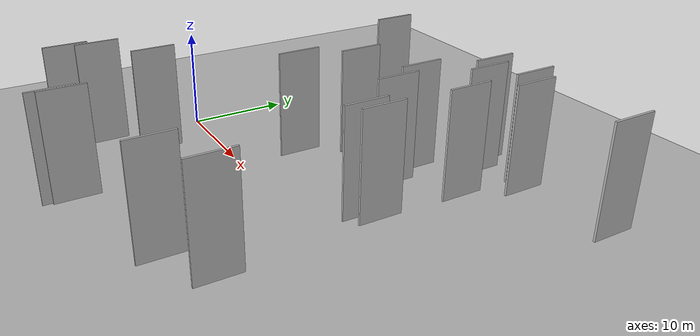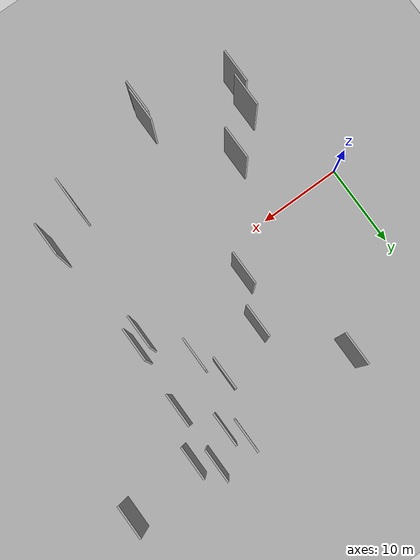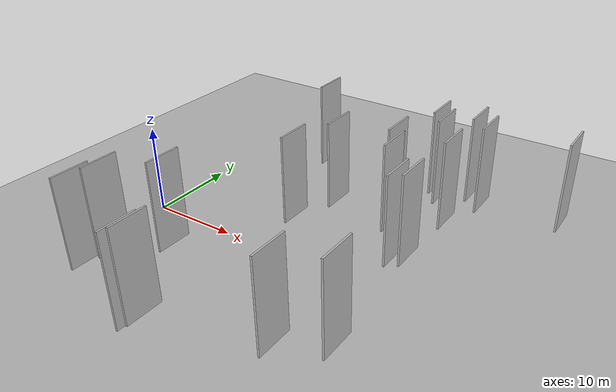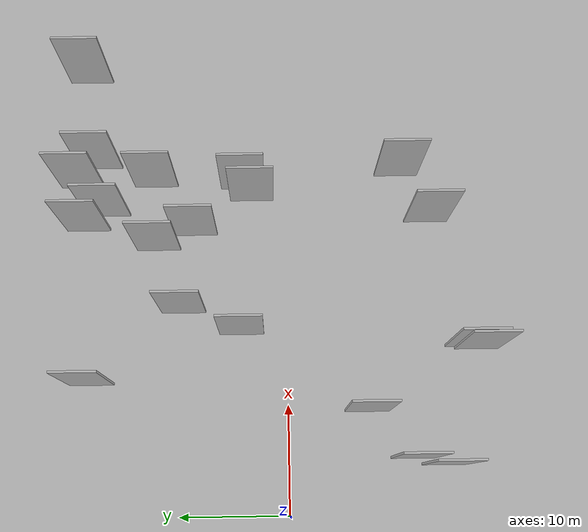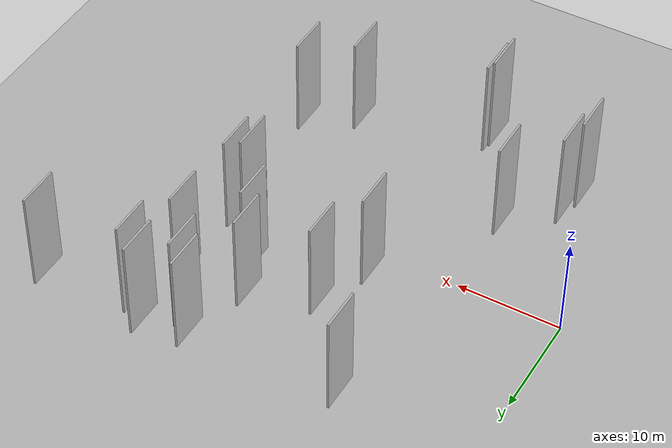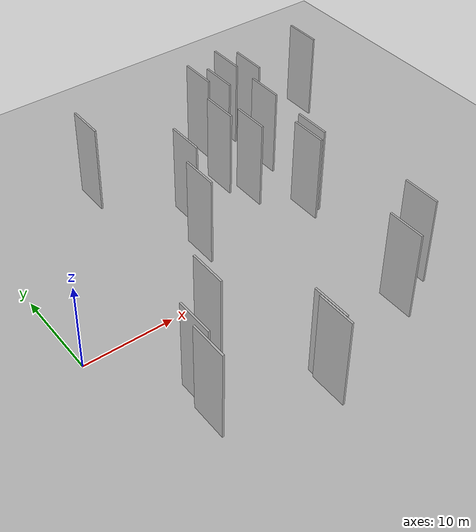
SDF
<?xml version="1.0" encoding="utf-8"?>

<sdf version="1.6">

   <world name="default">

      <gui fullscreen="0">

         <camera name="user_camera">

            <pose>-15 0 4.57585 0 0 0</pose>

            <view_controller>orbit</view_controller>

         </camera>

      </gui>

      <scene>

         <sky>

           <clouds>

             <speed>12</speed>

           </clouds>

         </sky>

         <ambient>0.4 0.4 0.4 1</ambient>

         <background>0.7 0.7 0.7 1</background>

         <shadows>1</shadows>

      </scene>

      <gravity>0 0 -9.8066</gravity>

      <magnetic_field>6e-06 2.3e-05 -4.2e-05</magnetic_field>

      <physics default="0" name="default_physics" type="ode">

         <ode>

            <solver>

               <type>quick</type>

               <iters>10</iters>

               <sor>1.0</sor>

               <use_dynamic_moi_rescaling>0</use_dynamic_moi_rescaling>

            </solver>

            <constraints>

               <cfm>0</cfm>

               <erp>0.2</erp>

               <contact_max_correcting_vel>100</contact_max_correcting_vel>

               <contact_surface_layer>0.001</contact_surface_layer>

            </constraints>

         </ode>

         <max_step_size>0.004</max_step_size>

         <real_time_factor>1</real_time_factor>

         <real_time_update_rate>250</real_time_update_rate>

      </physics>

      <light name="sun" type="directional">

         <cast_shadows>1</cast_shadows>

         <pose>0 0 10 0 0 0</pose>

         <diffuse>0.8 0.8 0.8 1</diffuse>

         <specular>0.2 0.2 0.2 1</specular>

         <attenuation>

            <range>1000</range>

            <constant>0.9</constant>

            <linear>0.01</linear>

            <quadratic>0.001</quadratic>

         </attenuation>

         <direction>-0.5 0.1 -0.9</direction>

      </light>

      <include>

         <name>ground_plane_1</name>

         <uri>model://HANNAS_ground_plane</uri>

         <pose>0 0 0  0 0 0</pose>

      </include>

      <include>

         <name>ground_plane_2</name>

         <uri>model://HANNAS_ground_plane</uri>

         <pose>100 0 0  0 0 0</pose>

      </include>

      <model name="HANNAS_wall_1">

         <static>1</static>

         <pose frame="">4.4582 -13.6974 2.5 0.000000 0.000000 1.570796</pose>

         <link name="link">

            <pose frame="">0 0 5.00 0 0 0</pose>

            <collision name="collision">

               <geometry>

                  <box>

                     <size>4.00 0.2 10.00</size>

                  </box>

               </geometry>

               <max_contacts>10</max_contacts>

               <surface>

                  <contact>

                     <ode/>

                  </contact>

                  <bounce/>

                  <friction>

                     <torsional>

                        <ode/>

                     </torsional>

                     <ode/>

                  </friction>

               </surface>

            </collision>

            <visual name="visual">

               <cast_shadows>0</cast_shadows>

               <geometry>

                  <box>

                     <size>4.00 0.2 10.00</size>

                  </box>

               </geometry>

               <material>

                  <script>

                     <uri>model://HANNAS_wall/materials/scripts</uri>

                     <uri>model://HANNAS_wall/materials/textures</uri>

                     <name>vrc/HANNAS_wall</name>

                  </script>

               </material>

            </visual>

            <self_collide>0</self_collide>

            <enable_wind>0</enable_wind>

            <kinematic>0</kinematic>

         </link>

      </model>

      <model name="HANNAS_wall_2">

         <static>1</static>

         <pose frame="">28.9669 3.1683 2.5 0.000000 0.000000 1.570796</pose>

         <link name="link">

            <pose frame="">0 0 5.00 0 0 0</pose>

            <collision name="collision">

               <geometry>

                  <box>

                     <size>4.00 0.2 10.00</size>

                  </box>

               </geometry>

               <max_contacts>10</max_contacts>

               <surface>

                  <contact>

                     <ode/>

                  </contact>

                  <bounce/>

                  <friction>

                     <torsional>

                        <ode/>

                     </torsional>

                     <ode/>

                  </friction>

               </surface>

            </collision>

            <visual name="visual">

               <cast_shadows>0</cast_shadows>

               <geometry>

                  <box>

                     <size>4.00 0.2 10.00</size>

                  </box>

               </geometry>

               <material>

                  <script>

                     <uri>model://HANNAS_wall/materials/scripts</uri>

                     <uri>model://HANNAS_wall/materials/textures</uri>

                     <name>vrc/HANNAS_wall</name>

                  </script>

               </material>

            </visual>

            <self_collide>0</self_collide>

            <enable_wind>0</enable_wind>

            <kinematic>0</kinematic>

         </link>

      </model>

      <model name="HANNAS_wall_3">

         <static>1</static>

         <pose frame="">26.2351 18.2482 2.5 0.000000 0.000000 1.570796</pose>

         <link name="link">

            <pose frame="">0 0 5.00 0 0 0</pose>

            <collision name="collision">

               <geometry>

                  <box>

                     <size>4.00 0.2 10.00</size>

                  </box>

               </geometry>

               <max_contacts>10</max_contacts>

               <surface>

                  <contact>

                     <ode/>

                  </contact>

                  <bounce/>

                  <friction>

                     <torsional>

                        <ode/>

                     </torsional>

                     <ode/>

                  </friction>

               </surface>

            </collision>

            <visual name="visual">

               <cast_shadows>0</cast_shadows>

               <geometry>

                  <box>

                     <size>4.00 0.2 10.00</size>

                  </box>

               </geometry>

               <material>

                  <script>

                     <uri>model://HANNAS_wall/materials/scripts</uri>

                     <uri>model://HANNAS_wall/materials/textures</uri>

                     <name>vrc/HANNAS_wall</name>

                  </script>

               </material>

            </visual>

            <self_collide>0</self_collide>

            <enable_wind>0</enable_wind>

            <kinematic>0</kinematic>

         </link>

      </model>

      <model name="HANNAS_wall_4">

         <static>1</static>

         <pose frame="">30.1284 4.0043 2.5 0.000000 0.000000 1.570796</pose>

         <link name="link">

            <pose frame="">0 0 5.00 0 0 0</pose>

            <collision name="collision">

               <geometry>

                  <box>

                     <size>4.00 0.2 10.00</size>

                  </box>

               </geometry>

               <max_contacts>10</max_contacts>

               <surface>

                  <contact>

                     <ode/>

                  </contact>

                  <bounce/>

                  <friction>

                     <torsional>

                        <ode/>

                     </torsional>

                     <ode/>

                  </friction>

               </surface>

            </collision>

            <visual name="visual">

               <cast_shadows>0</cast_shadows>

               <geometry>

                  <box>

                     <size>4.00 0.2 10.00</size>

                  </box>

               </geometry>

               <material>

                  <script>

                     <uri>model://HANNAS_wall/materials/scripts</uri>

                     <uri>model://HANNAS_wall/materials/textures</uri>

                     <name>vrc/HANNAS_wall</name>

                  </script>

               </material>

            </visual>

            <self_collide>0</self_collide>

            <enable_wind>0</enable_wind>

            <kinematic>0</kinematic>

         </link>

      </model>

      <model name="HANNAS_wall_5">

         <static>1</static>

         <pose frame="">5.0619 -10.9735 2.5 0.000000 0.000000 1.570796</pose>

         <link name="link">

            <pose frame="">0 0 5.00 0 0 0</pose>

            <collision name="collision">

               <geometry>

                  <box>

                     <size>4.00 0.2 10.00</size>

                  </box>

               </geometry>

               <max_contacts>10</max_contacts>

               <surface>

                  <contact>

                     <ode/>

                  </contact>

                  <bounce/>

                  <friction>

                     <torsional>

                        <ode/>

                     </torsional>

                     <ode/>

                  </friction>

               </surface>

            </collision>

            <visual name="visual">

               <cast_shadows>0</cast_shadows>

               <geometry>

                  <box>

                     <size>4.00 0.2 10.00</size>

                  </box>

               </geometry>

               <material>

                  <script>

                     <uri>model://HANNAS_wall/materials/scripts</uri>

                     <uri>model://HANNAS_wall/materials/textures</uri>

                     <name>vrc/HANNAS_wall</name>

                  </script>

               </material>

            </visual>

            <self_collide>0</self_collide>

            <enable_wind>0</enable_wind>

            <kinematic>0</kinematic>

         </link>

      </model>

      <model name="HANNAS_wall_6">

         <static>1</static>

         <pose frame="">18.4053 9.4377 2.5 0.000000 0.000000 1.570796</pose>

         <link name="link">

            <pose frame="">0 0 5.00 0 0 0</pose>

            <collision name="collision">

               <geometry>

                  <box>

                     <size>4.00 0.2 10.00</size>

                  </box>

               </geometry>

               <max_contacts>10</max_contacts>

               <surface>

                  <contact>

                     <ode/>

                  </contact>

                  <bounce/>

                  <friction>

                     <torsional>

                        <ode/>

                     </torsional>

                     <ode/>

                  </friction>

               </surface>

            </collision>

            <visual name="visual">

               <cast_shadows>0</cast_shadows>

               <geometry>

                  <box>

                     <size>4.00 0.2 10.00</size>

                  </box>

               </geometry>

               <material>

                  <script>

                     <uri>model://HANNAS_wall/materials/scripts</uri>

                     <uri>model://HANNAS_wall/materials/textures</uri>

                     <name>vrc/HANNAS_wall</name>

                  </script>

               </material>

            </visual>

            <self_collide>0</self_collide>

            <enable_wind>0</enable_wind>

            <kinematic>0</kinematic>

         </link>

      </model>

      <model name="HANNAS_wall_7">

         <static>1</static>

         <pose frame="">25.7033 8.3853 2.5 0.000000 0.000000 1.570796</pose>

         <link name="link">

            <pose frame="">0 0 5.00 0 0 0</pose>

            <collision name="collision">

               <geometry>

                  <box>

                     <size>4.00 0.2 10.00</size>

                  </box>

               </geometry>

               <max_contacts>10</max_contacts>

               <surface>

                  <contact>

                     <ode/>

                  </contact>

                  <bounce/>

                  <friction>

                     <torsional>

                        <ode/>

                     </torsional>

                     <ode/>

                  </friction>

               </surface>

            </collision>

            <visual name="visual">

               <cast_shadows>0</cast_shadows>

               <geometry>

                  <box>

                     <size>4.00 0.2 10.00</size>

                  </box>

               </geometry>

               <material>

                  <script>

                     <uri>model://HANNAS_wall/materials/scripts</uri>

                     <uri>model://HANNAS_wall/materials/textures</uri>

                     <name>vrc/HANNAS_wall</name>

                  </script>

               </material>

            </visual>

            <self_collide>0</self_collide>

            <enable_wind>0</enable_wind>

            <kinematic>0</kinematic>

         </link>

      </model>

      <model name="HANNAS_wall_8">

         <static>1</static>

         <pose frame="">24.3124 11.7627 2.5 0.000000 0.000000 1.570796</pose>

         <link name="link">

            <pose frame="">0 0 5.00 0 0 0</pose>

            <collision name="collision">

               <geometry>

                  <box>

                     <size>4.00 0.2 10.00</size>

                  </box>

               </geometry>

               <max_contacts>10</max_contacts>

               <surface>

                  <contact>

                     <ode/>

                  </contact>

                  <bounce/>

                  <friction>

                     <torsional>

                        <ode/>

                     </torsional>

                     <ode/>

                  </friction>

               </surface>

            </collision>

            <visual name="visual">

               <cast_shadows>0</cast_shadows>

               <geometry>

                  <box>

                     <size>4.00 0.2 10.00</size>

                  </box>

               </geometry>

               <material>

                  <script>

                     <uri>model://HANNAS_wall/materials/scripts</uri>

                     <uri>model://HANNAS_wall/materials/textures</uri>

                     <name>vrc/HANNAS_wall</name>

                  </script>

               </material>

            </visual>

            <self_collide>0</self_collide>

            <enable_wind>0</enable_wind>

            <kinematic>0</kinematic>

         </link>

      </model>

      <model name="HANNAS_wall_9">

         <static>1</static>

         <pose frame="">11.8897 17.6740 2.5 0.000000 0.000000 1.570796</pose>

         <link name="link">

            <pose frame="">0 0 5.00 0 0 0</pose>

            <collision name="collision">

               <geometry>

                  <box>

                     <size>4.00 0.2 10.00</size>

                  </box>

               </geometry>

               <max_contacts>10</max_contacts>

               <surface>

                  <contact>

                     <ode/>

                  </contact>

                  <bounce/>

                  <friction>

                     <torsional>

                        <ode/>

                     </torsional>

                     <ode/>

                  </friction>

               </surface>

            </collision>

            <visual name="visual">

               <cast_shadows>0</cast_shadows>

               <geometry>

                  <box>

                     <size>4.00 0.2 10.00</size>

                  </box>

               </geometry>

               <material>

                  <script>

                     <uri>model://HANNAS_wall/materials/scripts</uri>

                     <uri>model://HANNAS_wall/materials/textures</uri>

                     <name>vrc/HANNAS_wall</name>

                  </script>

               </material>

            </visual>

            <self_collide>0</self_collide>

            <enable_wind>0</enable_wind>

            <kinematic>0</kinematic>

         </link>

      </model>

      <model name="HANNAS_wall_10">

         <static>1</static>

         <pose frame="">31.2248 -10.2661 2.5 0.000000 0.000000 1.570796</pose>

         <link name="link">

            <pose frame="">0 0 5.00 0 0 0</pose>

            <collision name="collision">

               <geometry>

                  <box>

                     <size>4.00 0.2 10.00</size>

                  </box>

               </geometry>

               <max_contacts>10</max_contacts>

               <surface>

                  <contact>

                     <ode/>

                  </contact>

                  <bounce/>

                  <friction>

                     <torsional>

                        <ode/>

                     </torsional>

                     <ode/>

                  </friction>

               </surface>

            </collision>

            <visual name="visual">

               <cast_shadows>0</cast_shadows>

               <geometry>

                  <box>

                     <size>4.00 0.2 10.00</size>

                  </box>

               </geometry>

               <material>

                  <script>

                     <uri>model://HANNAS_wall/materials/scripts</uri>

                     <uri>model://HANNAS_wall/materials/textures</uri>

                     <name>vrc/HANNAS_wall</name>

                  </script>

               </material>

            </visual>

            <self_collide>0</self_collide>

            <enable_wind>0</enable_wind>

            <kinematic>0</kinematic>

         </link>

      </model>

      <model name="HANNAS_wall_11">

         <static>1</static>

         <pose frame="">15.0175 -16.2208 2.5 0.000000 0.000000 1.570796</pose>

         <link name="link">

            <pose frame="">0 0 5.00 0 0 0</pose>

            <collision name="collision">

               <geometry>

                  <box>

                     <size>4.00 0.2 10.00</size>

                  </box>

               </geometry>

               <max_contacts>10</max_contacts>

               <surface>

                  <contact>

                     <ode/>

                  </contact>

                  <bounce/>

                  <friction>

                     <torsional>

                        <ode/>

                     </torsional>

                     <ode/>

                  </friction>

               </surface>

            </collision>

            <visual name="visual">

               <cast_shadows>0</cast_shadows>

               <geometry>

                  <box>

                     <size>4.00 0.2 10.00</size>

                  </box>

               </geometry>

               <material>

                  <script>

                     <uri>model://HANNAS_wall/materials/scripts</uri>

                     <uri>model://HANNAS_wall/materials/textures</uri>

                     <name>vrc/HANNAS_wall</name>

                  </script>

               </material>

            </visual>

            <self_collide>0</self_collide>

            <enable_wind>0</enable_wind>

            <kinematic>0</kinematic>

         </link>

      </model>

      <model name="HANNAS_wall_12">

         <static>1</static>

         <pose frame="">32.2550 17.2422 2.5 0.000000 0.000000 1.570796</pose>

         <link name="link">

            <pose frame="">0 0 5.00 0 0 0</pose>

            <collision name="collision">

               <geometry>

                  <box>

                     <size>4.00 0.2 10.00</size>

                  </box>

               </geometry>

               <max_contacts>10</max_contacts>

               <surface>

                  <contact>

                     <ode/>

                  </contact>

                  <bounce/>

                  <friction>

                     <torsional>

                        <ode/>

                     </torsional>

                     <ode/>

                  </friction>

               </surface>

            </collision>

            <visual name="visual">

               <cast_shadows>0</cast_shadows>

               <geometry>

                  <box>

                     <size>4.00 0.2 10.00</size>

                  </box>

               </geometry>

               <material>

                  <script>

                     <uri>model://HANNAS_wall/materials/scripts</uri>

                     <uri>model://HANNAS_wall/materials/textures</uri>

                     <name>vrc/HANNAS_wall</name>

                  </script>

               </material>

            </visual>

            <self_collide>0</self_collide>

            <enable_wind>0</enable_wind>

            <kinematic>0</kinematic>

         </link>

      </model>

      <model name="HANNAS_wall_13">

         <static>1</static>

         <pose frame="">27.6321 16.4294 2.5 0.000000 0.000000 1.570796</pose>

         <link name="link">

            <pose frame="">0 0 5.00 0 0 0</pose>

            <collision name="collision">

               <geometry>

                  <box>

                     <size>4.00 0.2 10.00</size>

                  </box>

               </geometry>

               <max_contacts>10</max_contacts>

               <surface>

                  <contact>

                     <ode/>

                  </contact>

                  <bounce/>

                  <friction>

                     <torsional>

                        <ode/>

                     </torsional>

                     <ode/>

                  </friction>

               </surface>

            </collision>

            <visual name="visual">

               <cast_shadows>0</cast_shadows>

               <geometry>

                  <box>

                     <size>4.00 0.2 10.00</size>

                  </box>

               </geometry>

               <material>

                  <script>

                     <uri>model://HANNAS_wall/materials/scripts</uri>

                     <uri>model://HANNAS_wall/materials/textures</uri>

                     <name>vrc/HANNAS_wall</name>

                  </script>

               </material>

            </visual>

            <self_collide>0</self_collide>

            <enable_wind>0</enable_wind>

            <kinematic>0</kinematic>

         </link>

      </model>

      <model name="HANNAS_wall_14">

         <static>1</static>

         <pose frame="">30.4307 18.8848 2.5 0.000000 0.000000 1.570796</pose>

         <link name="link">

            <pose frame="">0 0 5.00 0 0 0</pose>

            <collision name="collision">

               <geometry>

                  <box>

                     <size>4.00 0.2 10.00</size>

                  </box>

               </geometry>

               <max_contacts>10</max_contacts>

               <surface>

                  <contact>

                     <ode/>

                  </contact>

                  <bounce/>

                  <friction>

                     <torsional>

                        <ode/>

                     </torsional>

                     <ode/>

                  </friction>

               </surface>

            </collision>

            <visual name="visual">

               <cast_shadows>0</cast_shadows>

               <geometry>

                  <box>

                     <size>4.00 0.2 10.00</size>

                  </box>

               </geometry>

               <material>

                  <script>

                     <uri>model://HANNAS_wall/materials/scripts</uri>

                     <uri>model://HANNAS_wall/materials/textures</uri>

                     <name>vrc/HANNAS_wall</name>

                  </script>

               </material>

            </visual>

            <self_collide>0</self_collide>

            <enable_wind>0</enable_wind>

            <kinematic>0</kinematic>

         </link>

      </model>

      <model name="HANNAS_wall_15">

         <static>1</static>

         <pose frame="">30.4062 12.0328 2.5 0.000000 0.000000 1.570796</pose>

         <link name="link">

            <pose frame="">0 0 5.00 0 0 0</pose>

            <collision name="collision">

               <geometry>

                  <box>

                     <size>4.00 0.2 10.00</size>

                  </box>

               </geometry>

               <max_contacts>10</max_contacts>

               <surface>

                  <contact>

                     <ode/>

                  </contact>

                  <bounce/>

                  <friction>

                     <torsional>

                        <ode/>

                     </torsional>

                     <ode/>

                  </friction>

               </surface>

            </collision>

            <visual name="visual">

               <cast_shadows>0</cast_shadows>

               <geometry>

                  <box>

                     <size>4.00 0.2 10.00</size>

                  </box>

               </geometry>

               <material>

                  <script>

                     <uri>model://HANNAS_wall/materials/scripts</uri>

                     <uri>model://HANNAS_wall/materials/textures</uri>

                     <name>vrc/HANNAS_wall</name>

                  </script>

               </material>

            </visual>

            <self_collide>0</self_collide>

            <enable_wind>0</enable_wind>

            <kinematic>0</kinematic>

         </link>

      </model>

      <model name="HANNAS_wall_16">

         <static>1</static>

         <pose frame="">40.8125 18.2715 2.5 0.000000 0.000000 1.570796</pose>

         <link name="link">

            <pose frame="">0 0 5.00 0 0 0</pose>

            <collision name="collision">

               <geometry>

                  <box>

                     <size>4.00 0.2 10.00</size>

                  </box>

               </geometry>

               <max_contacts>10</max_contacts>

               <surface>

                  <contact>

                     <ode/>

                  </contact>

                  <bounce/>

                  <friction>

                     <torsional>

                        <ode/>

                     </torsional>

                     <ode/>

                  </friction>

               </surface>

            </collision>

            <visual name="visual">

               <cast_shadows>0</cast_shadows>

               <geometry>

                  <box>

                     <size>4.00 0.2 10.00</size>

                  </box>

               </geometry>

               <material>

                  <script>

                     <uri>model://HANNAS_wall/materials/scripts</uri>

                     <uri>model://HANNAS_wall/materials/textures</uri>

                     <name>vrc/HANNAS_wall</name>

                  </script>

               </material>

            </visual>

            <self_collide>0</self_collide>

            <enable_wind>0</enable_wind>

            <kinematic>0</kinematic>

         </link>

      </model>

      <model name="HANNAS_wall_17">

         <static>1</static>

         <pose frame="">16.3551 4.1770 2.5 0.000000 0.000000 1.570796</pose>

         <link name="link">

            <pose frame="">0 0 5.00 0 0 0</pose>

            <collision name="collision">

               <geometry>

                  <box>

                     <size>4.00 0.2 10.00</size>

                  </box>

               </geometry>

               <max_contacts>10</max_contacts>

               <surface>

                  <contact>

                     <ode/>

                  </contact>

                  <bounce/>

                  <friction>

                     <torsional>

                        <ode/>

                     </torsional>

                     <ode/>

                  </friction>

               </surface>

            </collision>

            <visual name="visual">

               <cast_shadows>0</cast_shadows>

               <geometry>

                  <box>

                     <size>4.00 0.2 10.00</size>

                  </box>

               </geometry>

               <material>

                  <script>

                     <uri>model://HANNAS_wall/materials/scripts</uri>

                     <uri>model://HANNAS_wall/materials/textures</uri>

                     <name>vrc/HANNAS_wall</name>

                  </script>

               </material>

            </visual>

            <self_collide>0</self_collide>

            <enable_wind>0</enable_wind>

            <kinematic>0</kinematic>

         </link>

      </model>

      <model name="HANNAS_wall_18">

         <static>1</static>

         <pose frame="">14.7921 -17.0783 2.5 0.000000 0.000000 1.570796</pose>

         <link name="link">

            <pose frame="">0 0 5.00 0 0 0</pose>

            <collision name="collision">

               <geometry>

                  <box>

                     <size>4.00 0.2 10.00</size>

                  </box>

               </geometry>

               <max_contacts>10</max_contacts>

               <surface>

                  <contact>

                     <ode/>

                  </contact>

                  <bounce/>

                  <friction>

                     <torsional>

                        <ode/>

                     </torsional>

                     <ode/>

                  </friction>

               </surface>

            </collision>

            <visual name="visual">

               <cast_shadows>0</cast_shadows>

               <geometry>

                  <box>

                     <size>4.00 0.2 10.00</size>

                  </box>

               </geometry>

               <material>

                  <script>

                     <uri>model://HANNAS_wall/materials/scripts</uri>

                     <uri>model://HANNAS_wall/materials/textures</uri>

                     <name>vrc/HANNAS_wall</name>

                  </script>

               </material>

            </visual>

            <self_collide>0</self_collide>

            <enable_wind>0</enable_wind>

            <kinematic>0</kinematic>

         </link>

      </model>

      <model name="HANNAS_wall_19">

         <static>1</static>

         <pose frame="">9.2452 -6.9794 2.5 0.000000 0.000000 1.570796</pose>

         <link name="link">

            <pose frame="">0 0 5.00 0 0 0</pose>

            <collision name="collision">

               <geometry>

                  <box>

                     <size>4.00 0.2 10.00</size>

                  </box>

               </geometry>

               <max_contacts>10</max_contacts>

               <surface>

                  <contact>

                     <ode/>

                  </contact>

                  <bounce/>

                  <friction>

                     <torsional>

                        <ode/>

                     </torsional>

                     <ode/>

                  </friction>

               </surface>

            </collision>

            <visual name="visual">

               <cast_shadows>0</cast_shadows>

               <geometry>

                  <box>

                     <size>4.00 0.2 10.00</size>

                  </box>

               </geometry>

               <material>

                  <script>

                     <uri>model://HANNAS_wall/materials/scripts</uri>

                     <uri>model://HANNAS_wall/materials/textures</uri>

                     <name>vrc/HANNAS_wall</name>

                  </script>

               </material>

            </visual>

            <self_collide>0</self_collide>

            <enable_wind>0</enable_wind>

            <kinematic>0</kinematic>

         </link>

      </model>

      <model name="HANNAS_wall_20">

         <static>1</static>

         <pose frame="">26.7414 -12.8938 2.5 0.000000 0.000000 1.570796</pose>

         <link name="link">

            <pose frame="">0 0 5.00 0 0 0</pose>

            <collision name="collision">

               <geometry>

                  <box>

                     <size>4.00 0.2 10.00</size>

                  </box>

               </geometry>

               <max_contacts>10</max_contacts>

               <surface>

                  <contact>

                     <ode/>

                  </contact>

                  <bounce/>

                  <friction>

                     <torsional>

                        <ode/>

                     </torsional>

                     <ode/>

                  </friction>

               </surface>

            </collision>

            <visual name="visual">

               <cast_shadows>0</cast_shadows>

               <geometry>

                  <box>

                     <size>4.00 0.2 10.00</size>

                  </box>

               </geometry>

               <material>

                  <script>

                     <uri>model://HANNAS_wall/materials/scripts</uri>

                     <uri>model://HANNAS_wall/materials/textures</uri>

                     <name>vrc/HANNAS_wall</name>

                  </script>

               </material>

            </visual>

            <self_collide>0</self_collide>

            <enable_wind>0</enable_wind>

            <kinematic>0</kinematic>

         </link>

      </model>

   </world>

</sdf>

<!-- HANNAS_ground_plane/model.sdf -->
<sdf version="1.4">
<model name="HANNAS_ground_plane">
  <static>true</static>
    <link name="link">
      <collision name="collision">
        <geometry>
          <plane>
            <normal>0 0 1</normal>
            <size>1000 1000</size>
          </plane>
        </geometry>
        <surface>
          <friction>
            <ode>
              <mu>100</mu>
              <mu2>50</mu2>
            </ode>
          </friction>
        </surface>
      </collision>
      <visual name="visual">
        <cast_shadows>false</cast_shadows>
        <geometry>
          <plane>
            <normal>0 0 1</normal>
            <size>1000 1000</size>
          </plane>
        </geometry>
        <material>
          <script>
            <uri>model://HANNAS_ground_plane/materials/scripts/HANNAS_ground_plane.material</uri>
	    <uri>model://HANNAS_ground_plane/materials/textures</uri>
            <name>HANNASGroundPlane/Image</name>
          </script>
        </material>
      </visual>
    </link>
  </model>
</sdf>
